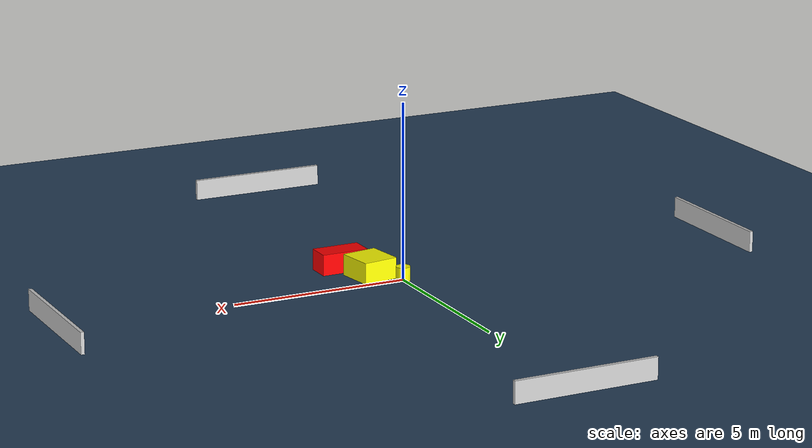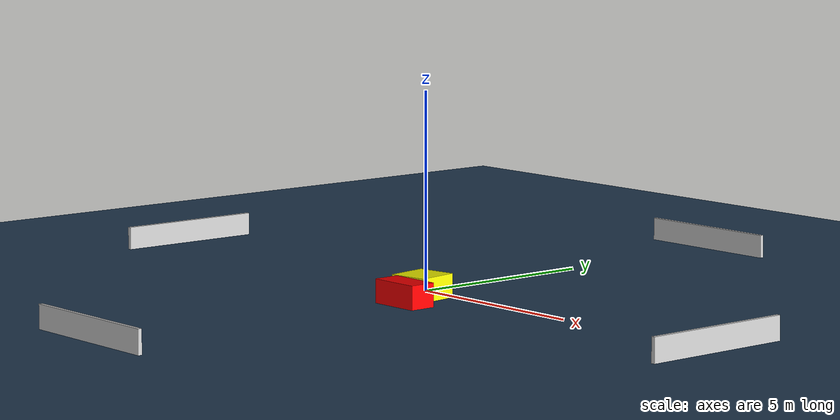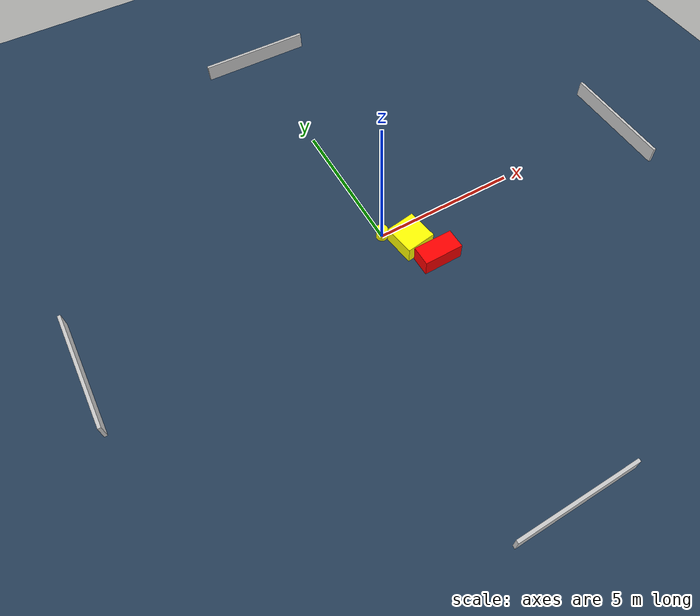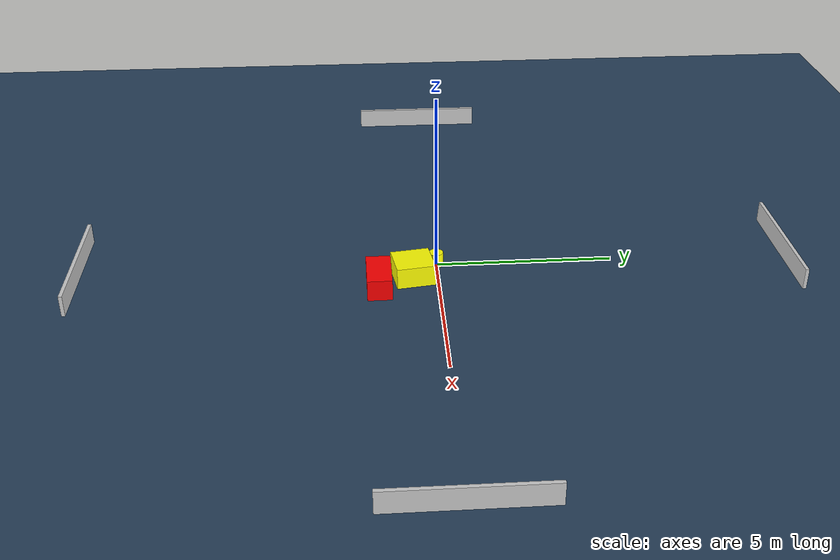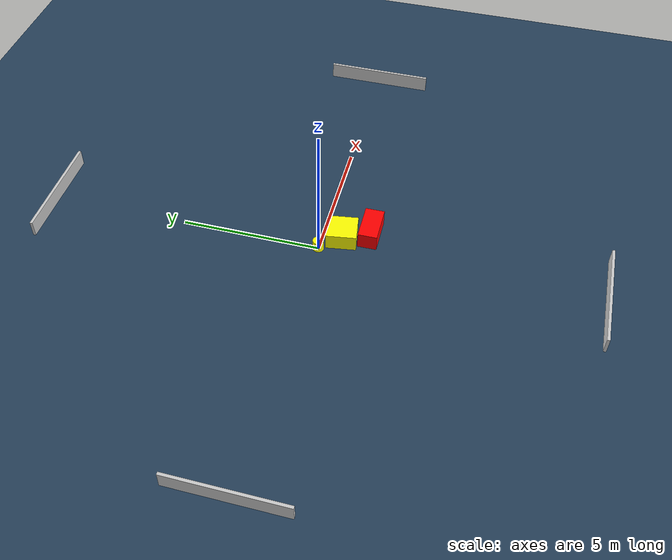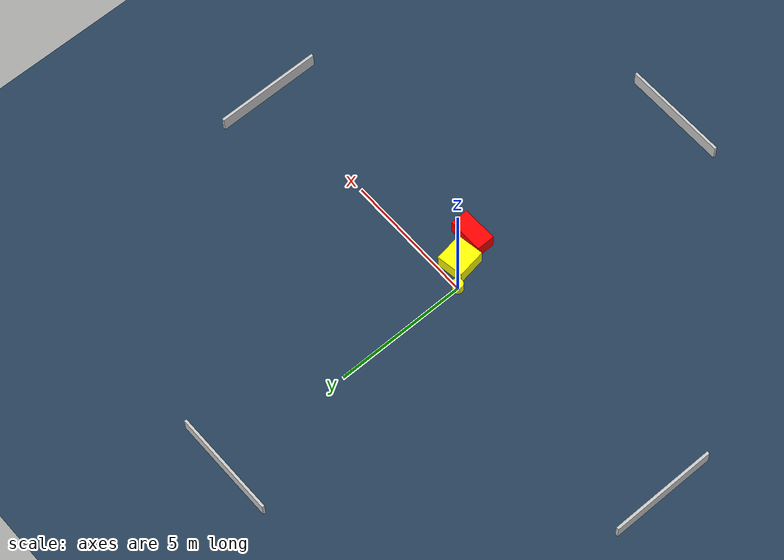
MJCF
<?xml version="1.0" ?>
<mujoco model="generated_environment">
  <option timestep="0.01" integrator="RK4" cone="elliptic"/>
  <default>
    <geom density="1"/>
  </default>
  <asset>
    <texture builtin="gradient" height="3072" name="skybox" rgb1="0.3 0.5 0.7" rgb2="0 0 0" type="skybox" width="512"/>
    <texture builtin="checker" height="300" name="groundplane" rgb1="0.2 0.3 0.4" rgb2="0.1 0.2 0.3" type="2d" width="300"/>
    <material name="groundplane" reflectance="0.2" texrepeat="5 5" texture="groundplane"/>
  </asset>
  <worldbody>
    <light dir="0 0 -1" directional="true" pos="0 0 1.5"/>
    <geom condim="3" friction="0.5 0.005 0.001" material="groundplane" name="floor" pos="0 0 0" size="0 0 0.05" type="plane"/>
    <body name="walls">
      <geom name="wall_1" condim="4" pos="-10.0 0.0 0.3" rgba="0.800000011920929 0.800000011920929 0.800000011920929 1.0" size="0.05 2.0 0.3" type="box"/>
      <geom name="wall_2" condim="4" pos="10.0 0.0 0.3" rgba="0.800000011920929 0.800000011920929 0.800000011920929 1.0" size="0.05 2.0 0.3" type="box"/>
      <geom name="wall_3" condim="4" pos="0.0 -10.0 0.3" rgba="0.800000011920929 0.800000011920929 0.800000011920929 1.0" size="2.0 0.05 0.3" type="box"/>
      <geom name="wall_4" condim="4" pos="0.0 10.0 0.3" rgba="0.800000011920929 0.800000011920929 0.800000011920929 1.0" size="2.0 0.05 0.3" type="box"/>
    </body>
    <body name="robot">
      <joint name="joint_x" type="slide" pos="0 0 0" axis="1 0 0"/>
      <joint name="joint_y" type="slide" pos="0 0 0" axis="0 1 0"/>
      <geom name="robot" type="cylinder" pos="0.0 0.0 0.2" size="0.2 0.2 0.0" mass="5.0" friction="1.0 0.005 0.0001" condim="4" rgba="1.0 1.0 0.0 1.0"/>
    </body>
    <body name="obstacle_1_movable">
      <geom name="obstacle_1_movable" condim="4" pos="0.6740158576411373 -0.6890858509773728 0.3" euler="0 0 278.6457320158978" friction="0.0 0.005 0.001" rgba="1.0 1.0 0.0 1.0" size="0.5408417466883276 0.5106698434993379 0.3" type="box" mass="0.1"/>
      <joint type="free"/>
    </body>
    <body name="obstacle_2_static">
      <geom name="obstacle_2_static" condim="4" pos="1.1273261743901966 -1.6402689059376474 0.3" euler="0 0 180.62008219866627" friction="0.0 0.005 0.001" rgba="1.0 0.0 0.0 1.0" size="0.6777369395718056 0.3434347750554435 0.3" type="box"/>
    </body>
  </worldbody>
  <actuator>
    <motor name="actuator_x" joint="joint_x" gear="1" ctrlrange="-1 1"/>
    <motor name="actuator_y" joint="joint_y" gear="1" ctrlrange="-1 1"/>
  </actuator>
</mujoco>
